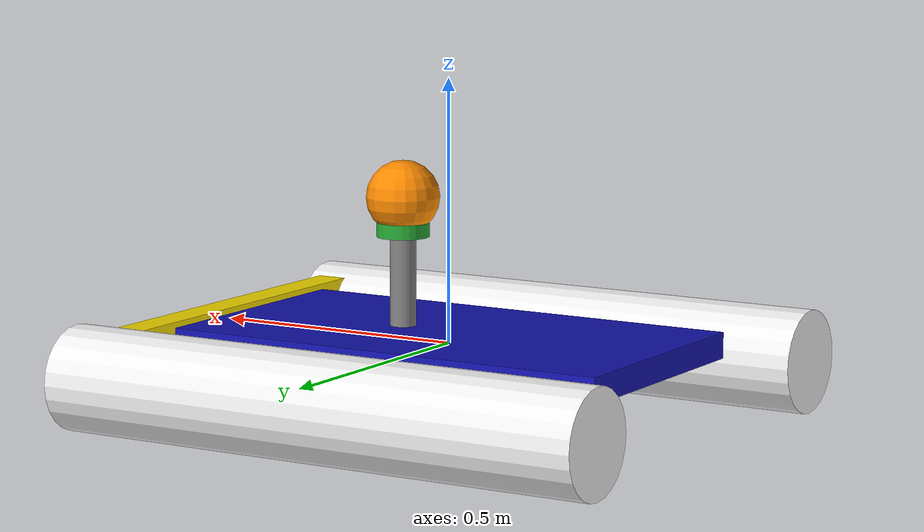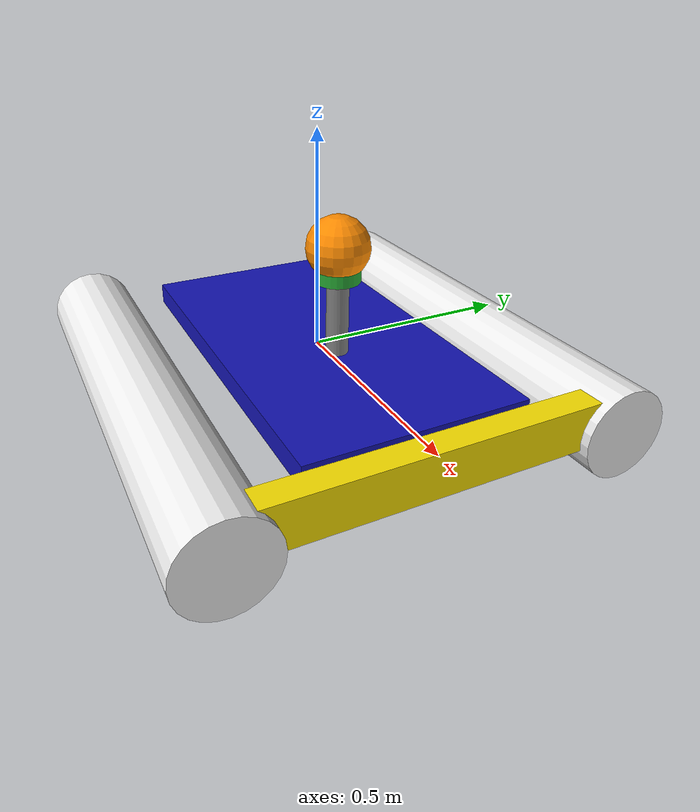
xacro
<?xml version="1.0"?>

<robot name="aqua_waste_robot" xmlns:xacro="http://www.ros.org/wiki/xacro">
<xacro:arg name="robot_ns" default="aqua_robot"/>
  <!--  MATERIALS                                                    -->
  <material name="blue_body">
    <color rgba="0.08 0.08 0.70 1"/>
  </material>
  <material name="white_hull">
    <color rgba="0.95 0.95 0.95 1"/>
  </material>
  <material name="grey_frame">
    <color rgba="0.5 0.5 0.5 1"/>
  </material>
  <material name="orange_sensor">
    <color rgba="1.0 0.55 0.0 1"/>
  </material>
  <material name="yellow_bumper">
    <color rgba="1.0 0.9 0.0 1"/>
  </material>
  <material name="green_led">
    <color rgba="0.0 1.0 0.0 1"/>
  </material>
  <material name="dark_prop">
    <color rgba="0.2 0.2 0.2 1"/>
  </material>
  <material name="green">
    <color rgba="0.0 1.0 0.0 1.0"/>
  </material>

  <!--  BASE LINK  (central body)                                    -->

  <link name="base_link">
    <inertial>
      <mass value="8.0"/>
<origin xyz="0 0 0.275" rpy="1.5708 0 0"/>
      <inertia ixx="0.5" ixy="0" ixz="0" iyy="0.8" iyz="0" izz="0.9"/>
    </inertial>
    <visual>
      <origin xyz="0 0 0" rpy="0 0 0"/>
      <geometry><box size="0.9 0.5 0.05"/></geometry>
      <material name="blue_body"/>
    </visual>
    <collision>
      <origin xyz="0 0 0" rpy="0 0 0"/>
      <geometry><box size="0.9 0.5 0.05"/></geometry>
    </collision>
  </link>

  <!--  LEFT HULL                                                    -->

  <link name="hull_left">
    <inertial>
      <mass value="1.5"/>
      <inertia ixx="0.05" ixy="0" ixz="0" iyy="0.12" iyz="0" izz="0.12"/>
    </inertial>
    <visual>
      <origin xyz="0 0 0" rpy="0 1.5708 0"/>
      <geometry><cylinder radius="0.10" length="1.1"/></geometry>
      <material name="white_hull"/>
    </visual>
    <collision>
      <origin xyz="0 0 0" rpy="0 1.5708 0"/>
      <geometry><cylinder radius="0.10" length="1.1"/></geometry>
    </collision>
  </link>
  <joint name="hull_left_joint" type="fixed">
    <parent link="base_link"/>
    <child link="hull_left"/>
    <origin xyz="0 -0.42 -0.05" rpy="0 0 0"/>
  </joint>

  <!--  RIGHT HULL                                                   -->

  <link name="hull_right">
    <inertial>
      <mass value="1.5"/>
      <inertia ixx="0.05" ixy="0" ixz="0" iyy="0.12" iyz="0" izz="0.12"/>
    </inertial>
    <visual>
      <origin xyz="0 0 0" rpy="0 1.5708 0"/>
      <geometry><cylinder radius="0.10" length="1.1"/></geometry>
      <material name="white_hull"/>
    </visual>
    <collision>
      <origin xyz="0 0 0" rpy="0 1.5708 0"/>
      <geometry><cylinder radius="0.10" length="1.1"/></geometry>
    </collision>
  </link>
  <joint name="hull_right_joint" type="fixed">
    <parent link="base_link"/>
    <child link="hull_right"/>
    <origin xyz="0 0.42 -0.05" rpy="0 0 0"/>
  </joint>

  <!--  SENSOR MAST                                                  -->

<link name="mast">
  <inertial>
    <mass value="0.2"/>
    <inertia ixx="0.001" ixy="0" ixz="0"
             iyy="0.001" iyz="0"
             izz="0.001"/>
  </inertial>

  <visual>
    <origin xyz="0 0 0" rpy="0 0 0"/>
    <geometry>
      <cylinder radius="0.025" length="0.28"/>
    </geometry>
    <material name="grey_frame"/>
  </visual>

  <collision>
    <geometry>
      <cylinder radius="0.025" length="0.28"/>
    </geometry>
  </collision>
</link>
  <joint name="mast_joint" type="fixed">
    <parent link="base_link"/>
    <child link="mast"/>
    <origin xyz="0.1 0 0.07" rpy="0 0 0"/>
  </joint>

  <!--  CAMERA/SENSOR HEAD                                          -->

  <link name="camera_link">
    <inertial>
      <mass value="0.1"/>
      <inertia ixx="0.0001" ixy="0" ixz="0" iyy="0.0001" iyz="0" izz="0.0001"/>
    </inertial>
    <visual>
      <origin xyz="0 0 0" rpy="0 0 0"/>
      <geometry><sphere radius="0.07"/></geometry>
      <material name="orange_sensor"/>
    </visual>
  </link>
  <joint name="camera_joint" type="fixed">
    <parent link="mast"/>
    <child link="camera_link"/>
    <origin xyz="0 0 0.20" rpy="0 0 0"/>
  </joint>

  <!--  LiDAR                                                       -->

  <link name="lidar_link">
    <inertial>
      <mass value="0.2"/>
      <inertia ixx="0.001" ixy="0" ixz="0"
               iyy="0.001" iyz="0"
               izz="0.001"/>
    </inertial>

<visual>
  <geometry>
    <cylinder radius="0.05" length="0.05"/>
  </geometry>

  <material>
    <ambient>0 1 0 1</ambient>
    <diffuse>0 1 0 1</diffuse>
    <specular>0.1 0.1 0.1 1</specular>
    <emissive>0 0.3 0 1</emissive>
  </material>

</visual>
<collision>
  <geometry>
    <cylinder radius="0.05" length="0.05"/>
  </geometry>
</collision>

  </link>

  <joint name="lidar_joint" type="fixed">
    <parent link="mast"/>
    <child link="lidar_link"/>
    <origin xyz="0 0 0.15" rpy="0 0 0"/>
  </joint>

  <!-- IMU -->

  <link name="imu_link">
    <inertial>
      <mass value="0.05"/>
      <inertia ixx="0.0001" ixy="0" ixz="0"
               iyy="0.0001" iyz="0"
               izz="0.0001"/>
    </inertial>
  </link>

  <joint name="imu_joint" type="fixed">
    <parent link="base_link"/>
    <child link="imu_link"/>
    <origin xyz="0 0 0.05" rpy="0 0 0"/>
  </joint>

  <!-- GPS -->

  <link name="gps_link">
    <inertial>
      <mass value="0.05"/>
      <inertia ixx="0.0001" ixy="0" ixz="0"
               iyy="0.0001" iyz="0"
               izz="0.0001"/>
    </inertial>
  </link>

  <joint name="gps_joint" type="fixed">
    <parent link="base_link"/>
    <child link="gps_link"/>
    <origin xyz="0 0 0.08" rpy="0 0 0"/>
  </joint>

  <!--  LEFT VIRTUAL WHEEL                                           -->

  <gazebo reference="lidar_link">
    <material>Gazebo/Green</material>

   <sensor type="ray" name="lidar_sensor">

  <update_rate>10</update_rate>

<ray>
  <scan>

<horizontal>
  <samples>360</samples>
  <resolution>1</resolution>
  <min_angle>-3.14159</min_angle>
  <max_angle>3.14159</max_angle>
</horizontal>

<vertical>
  <samples>1</samples>
  <resolution>1</resolution>
  <min_angle>0.0</min_angle>
  <max_angle>0.0</max_angle>
</vertical>

  </scan>

  <range>
    <min>0.12</min>
    <max>20.0</max>
    <resolution>0.01</resolution>
  </range>
</ray>
<plugin name="laser_controller"
        filename="libgazebo_ros_ray_sensor.so">

  <ros>
    <namespace>$(arg robot_ns)</namespace>
  </ros>

<output_type>sensor_msgs/LaserScan</output_type><topic_name>scan</topic_name><frame_name>lidar_link</frame_name>

</plugin>
    </sensor>
  </gazebo>

  <gazebo reference="imu_link">
    <sensor name="imu_sensor" type="imu">
      <always_on>true</always_on>
      <update_rate>50</update_rate>

  <plugin name="imu_plugin"
          filename="libgazebo_ros_imu_sensor.so">
    <ros>
      <namespace>$(arg robot_ns)</namespace>
    </ros>
    <topic_name>imu</topic_name>
    <frame_name>imu_link</frame_name>
  </plugin>
</sensor>

  </gazebo>

<gazebo reference="gps_link">
  <sensor name="gps_sensor" type="gps">
    <always_on>true</always_on>
    <update_rate>5</update_rate>

<plugin name="gps_plugin"
        filename="libgazebo_ros_gps_sensor.so">

  <ros>
      <namespace>$(arg robot_ns)</namespace>
  </ros>

  <frame_name>gps_link</frame_name>

</plugin>

  </sensor>
</gazebo>
  <!-- Gazebo camera sensor -->
  <gazebo reference="camera_link">
    <sensor type="camera" name="waste_camera">
      <update_rate>30.0</update_rate>
      <camera name="head">
        <horizontal_fov>1.3962634</horizontal_fov>
        <image>
          <width>1280</width>
          <height>720</height>
          <format>R8G8B8</format>
        </image>
        <clip>
          <near>0.02</near>
          <far>50</far>
        </clip>
      </camera>
       <plugin
         name="camera_controller"
         filename="libgazebo_ros_camera.so">

         <ros>
          <namespace>$(arg robot_ns)</namespace>

          <remapping>image_raw:=image_raw</remapping>
          <remapping>camera_info:=camera_info</remapping>

         </ros>

         <frame_name>camera_link</frame_name>

      </plugin>
    </sensor>
    <material>Gazebo/Orange</material>
  </gazebo>

  <!--  FRONT BUMPER / COLLECTOR BAR                                 -->

  <link name="bumper">
    <inertial>
      <mass value="0.3"/>
      <inertia ixx="0.005" ixy="0" ixz="0" iyy="0.001" iyz="0" izz="0.005"/>
    </inertial>
    <visual>
      <origin xyz="0 0 0" rpy="0 0 0"/>
      <geometry><box size="0.06 0.95 0.10"/></geometry>
      <material name="yellow_bumper"/>
    </visual>
    <collision>
      <origin xyz="0 0 0" rpy="0 0 0"/>
      <geometry><box size="0.06 0.95 0.10"/></geometry>
    </collision>
  </link>
  <joint name="bumper_joint" type="fixed">
    <parent link="base_link"/>
    <child link="bumper"/>
    <origin xyz="0.5 0 -0.02" rpy="0 0 0"/>
  </joint>

  <!--  LEFT VIRTUAL THRUSTER                                       -->

  <!--  RIGHT VIRTUAL THRUSTER                                      -->

  <!--  DIFFERENTIAL DRIVE PLUGIN (for ROS2 control)                -->

  <!-- Gazebo material overrides -->

<gazebo reference="base_link">
    <material>Gazebo/Yellow</material>
  </gazebo>
  <gazebo reference="hull_left">
    <material>Gazebo/White</material>
  </gazebo>
  <gazebo reference="hull_right">
    <material>Gazebo/White</material>
  </gazebo>
  <gazebo reference="bumper">
    <material>Gazebo/Yellow</material>
  </gazebo>

  <!--  DIFF DRIVE CONTROLLER                                       -->

  <!--  FORCE CONTROLLER                                             -->

<gazebo>
  <plugin name="planar_move" filename="libgazebo_ros_planar_move.so">

<ros>
   <namespace>$(arg robot_ns)</namespace>
</ros>

<update_rate>30</update_rate>

<publish_odom>true</publish_odom>
<publish_odom_tf>true</publish_odom_tf>

<command_topic>cmd_vel</command_topic>

<odometry_topic>odom</odometry_topic>

<odometry_frame>odom</odometry_frame>

<robot_base_frame>base_link</robot_base_frame>

  </plugin>
</gazebo>
</robot>
